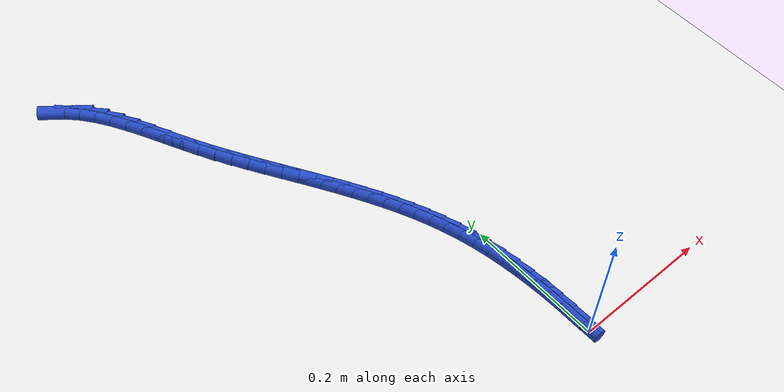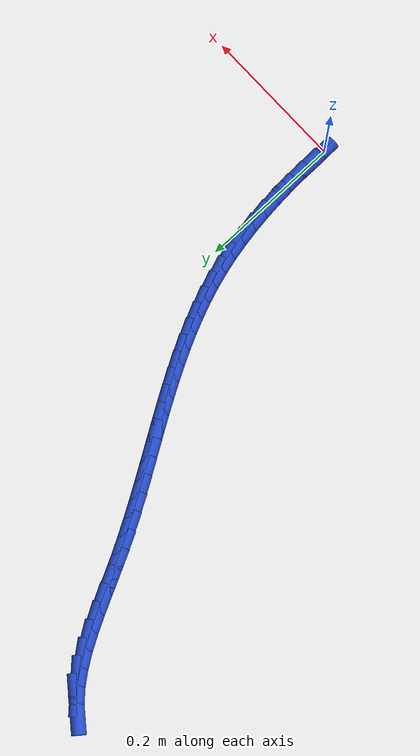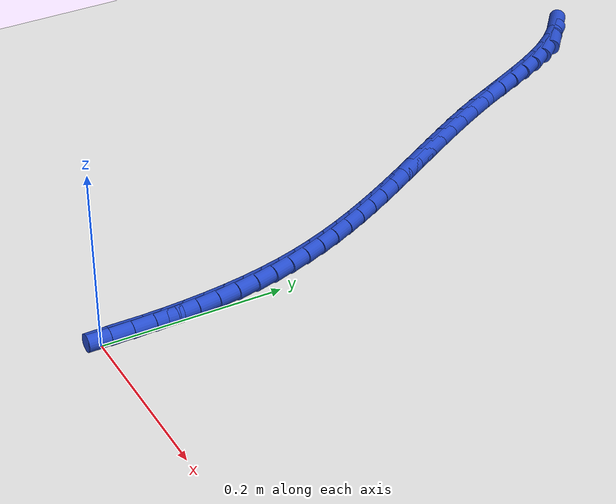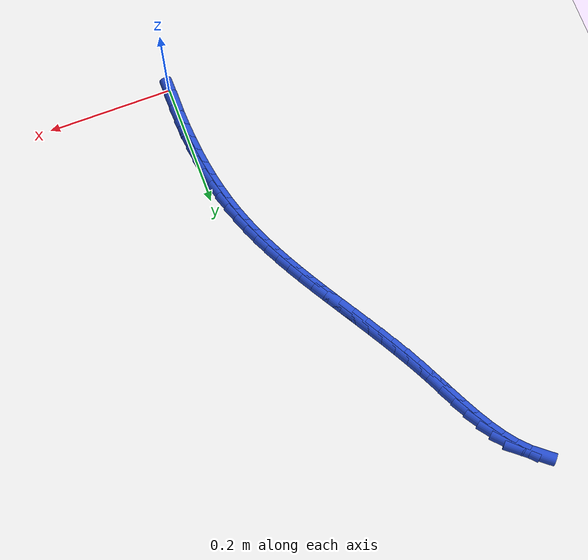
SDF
<sdf version="1.6">
 <world name="default">
  <model name="ground_plane">
   <static>1</static>
   <link name="link">
    <collision name="collision">
     <geometry><plane><normal>0 0 1</normal><size>100 100</size></plane></geometry>
     <surface><friction><ode><mu>100</mu><mu2>50</mu2></ode></friction></surface>
    </collision>
    <visual name="visual">
     <cast_shadows>0</cast_shadows>
     <geometry><plane><normal>0 0 1</normal><size>100 100</size></plane></geometry>
     <material>
      <script><uri>file://media/materials/scripts/gazebo.material</uri><name>Gazebo/WhiteGlow</name></script>
     </material>
    </visual>
   </link>
  </model>
  <model name="line">
   <link name="link_1">
    <pose>0.00020848488752704265 0.02410749578076906 0.01 0 1.57 -1.5562668115659875</pose>
    <collision name="collision">
     <geometry><cylinder><radius>0.01</radius><length>0.08</length></cylinder></geometry>
    </collision>
    <visual name="visual">
     <material>
      <script><name>Gazebo/Blue</name><uri>file://media/materials/scripts/gazebo.material</uri></script>
     </material>
     <geometry><cylinder><radius>0.01</radius><length>0.08</length></cylinder></geometry>
    </visual>
   </link>
   <link name="link_2">
    <pose>-0.00014284811022527544 0.04828643561047386 0.01 0 1.57 -1.5308184323632508</pose>
    <collision name="collision">
     <geometry><cylinder><radius>0.01</radius><length>0.08</length></cylinder></geometry>
    </collision>
    <visual name="visual">
     <material>
      <script><name>Gazebo/Blue</name><uri>file://media/materials/scripts/gazebo.material</uri></script>
     </material>
     <geometry><cylinder><radius>0.01</radius><length>0.08</length></cylinder></geometry>
    </visual>
   </link>
   <link name="link_3">
    <pose>-0.001109999954018487 0.07246571163970908 0.01 0 1.57 -1.5029176373909436</pose>
    <collision name="collision">
     <geometry><cylinder><radius>0.01</radius><length>0.08</length></cylinder></geometry>
    </collision>
    <visual name="visual">
     <material>
      <script><name>Gazebo/Blue</name><uri>file://media/materials/scripts/gazebo.material</uri></script>
     </material>
     <geometry><cylinder><radius>0.01</radius><length>0.08</length></cylinder></geometry>
    </visual>
   </link>
   <link name="link_4">
    <pose>-0.002748971604614114 0.09657421601906961 0.01 0 1.57 -1.4723618055832173</pose>
    <collision name="collision">
     <geometry><cylinder><radius>0.01</radius><length>0.08</length></cylinder></geometry>
    </collision>
    <visual name="visual">
     <material>
      <script><name>Gazebo/Blue</name><uri>file://media/materials/scripts/gazebo.material</uri></script>
     </material>
     <geometry><cylinder><radius>0.01</radius><length>0.08</length></cylinder></geometry>
    </visual>
   </link>
   <link name="link_5">
    <pose>-0.005115764022773682 0.12054084089915029 0.01 0 1.57 -1.4389289060948756</pose>
    <collision name="collision">
     <geometry><cylinder><radius>0.01</radius><length>0.08</length></cylinder></geometry>
    </collision>
    <visual name="visual">
     <material>
      <script><name>Gazebo/Blue</name><uri>file://media/materials/scripts/gazebo.material</uri></script>
     </material>
     <geometry><cylinder><radius>0.01</radius><length>0.08</length></cylinder></geometry>
    </visual>
   </link>
   <link name="link_6">
    <pose>-0.008266378169258713 0.14429447843054588 0.01 0 1.57 -1.4023807165650055</pose>
    <collision name="collision">
     <geometry><cylinder><radius>0.01</radius><length>0.08</length></cylinder></geometry>
    </collision>
    <visual name="visual">
     <material>
      <script><name>Gazebo/Blue</name><uri>file://media/materials/scripts/gazebo.material</uri></script>
     </material>
     <geometry><cylinder><radius>0.01</radius><length>0.08</length></cylinder></geometry>
    </visual>
   </link>
   <link name="link_7">
    <pose>-0.01225681500483073 0.16776402076385136 0.01 0 1.57 -1.362468233248887</pose>
    <collision name="collision">
     <geometry><cylinder><radius>0.01</radius><length>0.08</length></cylinder></geometry>
    </collision>
    <visual name="visual">
     <material>
      <script><name>Gazebo/Blue</name><uri>file://media/materials/scripts/gazebo.material</uri></script>
     </material>
     <geometry><cylinder><radius>0.01</radius><length>0.08</length></cylinder></geometry>
    </visual>
   </link>
   <link name="link_8">
    <pose>-0.017143075490251257 0.19087836004966147 0.01 0 1.57 -1.3189401385113497</pose>
    <collision name="collision">
     <geometry><cylinder><radius>0.01</radius><length>0.08</length></cylinder></geometry>
    </collision>
    <visual name="visual">
     <material>
      <script><name>Gazebo/Blue</name><uri>file://media/materials/scripts/gazebo.material</uri></script>
     </material>
     <geometry><cylinder><radius>0.01</radius><length>0.08</length></cylinder></geometry>
    </visual>
   </link>
   <link name="link_9">
    <pose>-0.022981160586281815 0.21356638843857104 0.01 0 1.57 -1.2725637473694866</pose>
    <collision name="collision">
     <geometry><cylinder><radius>0.01</radius><length>0.08</length></cylinder></geometry>
    </collision>
    <visual name="visual">
     <material>
      <script><name>Gazebo/Blue</name><uri>file://media/materials/scripts/gazebo.material</uri></script>
     </material>
     <geometry><cylinder><radius>0.01</radius><length>0.08</length></cylinder></geometry>
    </visual>
   </link>
   <link name="link_10">
    <pose>-0.029808168838661362 0.23577520859121814 0.01 0 1.57 -1.2282336816075337</pose>
    <collision name="collision">
     <geometry><cylinder><radius>0.01</radius><length>0.08</length></cylinder></geometry>
    </collision>
    <visual name="visual">
     <material>
      <script><name>Gazebo/Blue</name><uri>file://media/materials/scripts/gazebo.material</uri></script>
     </material>
     <geometry><cylinder><radius>0.01</radius><length>0.08</length></cylinder></geometry>
    </visual>
   </link>
   <link name="link_11">
    <pose>-0.03756993506367793 0.2575398462754079 0.01 0 1.57 -1.1877903860219634</pose>
    <collision name="collision">
     <geometry><cylinder><radius>0.01</radius><length>0.08</length></cylinder></geometry>
    </collision>
    <visual name="visual">
     <material>
      <script><name>Gazebo/Blue</name><uri>file://media/materials/scripts/gazebo.material</uri></script>
     </material>
     <geometry><cylinder><radius>0.01</radius><length>0.08</length></cylinder></geometry>
    </visual>
   </link>
   <link name="link_12">
    <pose>-0.04618478674090746 0.2789218277156787 0.01 0 1.57 -1.1515464099687087</pose>
    <collision name="collision">
     <geometry><cylinder><radius>0.01</radius><length>0.08</length></cylinder></geometry>
    </collision>
    <visual name="visual">
     <material>
      <script><name>Gazebo/Blue</name><uri>file://media/materials/scripts/gazebo.material</uri></script>
     </material>
     <geometry><cylinder><radius>0.01</radius><length>0.08</length></cylinder></geometry>
    </visual>
   </link>
   <link name="link_13">
    <pose>-0.055571045725794556 0.29998268455483396 0.01 0 1.57 -1.1197120318245413</pose>
    <collision name="collision">
     <geometry><cylinder><radius>0.01</radius><length>0.08</length></cylinder></geometry>
    </collision>
    <visual name="visual">
     <material>
      <script><name>Gazebo/Blue</name><uri>file://media/materials/scripts/gazebo.material</uri></script>
     </material>
     <geometry><cylinder><radius>0.01</radius><length>0.08</length></cylinder></geometry>
    </visual>
   </link>
   <link name="link_14">
    <pose>-0.0656470338737839 0.3207839484356774 0.01 0 1.57 -1.0924095805687792</pose>
    <collision name="collision">
     <geometry><cylinder><radius>0.01</radius><length>0.08</length></cylinder></geometry>
    </collision>
    <visual name="visual">
     <material>
      <script><name>Gazebo/Blue</name><uri>file://media/materials/scripts/gazebo.material</uri></script>
     </material>
     <geometry><cylinder><radius>0.01</radius><length>0.08</length></cylinder></geometry>
    </visual>
   </link>
   <link name="link_15">
    <pose>-0.0763310730403201 0.3413871510010125 0.01 0 1.57 -1.0696900229705566</pose>
    <collision name="collision">
     <geometry><cylinder><radius>0.01</radius><length>0.08</length></cylinder></geometry>
    </collision>
    <visual name="visual">
     <material>
      <script><name>Gazebo/Blue</name><uri>file://media/materials/scripts/gazebo.material</uri></script>
     </material>
     <geometry><cylinder><radius>0.01</radius><length>0.08</length></cylinder></geometry>
    </visual>
   </link>
   <link name="link_16">
    <pose>-0.08754148508084778 0.361853823893643 0.01 0 1.57 -1.051549622548458</pose>
    <collision name="collision">
     <geometry><cylinder><radius>0.01</radius><length>0.08</length></cylinder></geometry>
    </collision>
    <visual name="visual">
     <material>
      <script><name>Gazebo/Blue</name><uri>file://media/materials/scripts/gazebo.material</uri></script>
     </material>
     <geometry><cylinder><radius>0.01</radius><length>0.08</length></cylinder></geometry>
    </visual>
   </link>
   <link name="link_17">
    <pose>-0.09919659185081163 0.3822454987563724 0.01 0 1.57 -1.0379449558422367</pose>
    <collision name="collision">
     <geometry><cylinder><radius>0.01</radius><length>0.08</length></cylinder></geometry>
    </collision>
    <visual name="visual">
     <material>
      <script><name>Gazebo/Blue</name><uri>file://media/materials/scripts/gazebo.material</uri></script>
     </material>
     <geometry><cylinder><radius>0.01</radius><length>0.08</length></cylinder></geometry>
    </visual>
   </link>
   <link name="link_18">
    <pose>-0.11121471520565619 0.40262370723200414 0.01 0 1.57 -1.0288053096682461</pose>
    <collision name="collision">
     <geometry><cylinder><radius>0.01</radius><length>0.08</length></cylinder></geometry>
    </collision>
    <visual name="visual">
     <material>
      <script><name>Gazebo/Blue</name><uri>file://media/materials/scripts/gazebo.material</uri></script>
     </material>
     <geometry><cylinder><radius>0.01</radius><length>0.08</length></cylinder></geometry>
    </visual>
   </link>
   <link name="link_19">
    <pose>-0.12351417700082622 0.4230499809633422 0.01 0 1.57 -1.0240420607333447</pose>
    <collision name="collision">
     <geometry><cylinder><radius>0.01</radius><length>0.08</length></cylinder></geometry>
    </collision>
    <visual name="visual">
     <material>
      <script><name>Gazebo/Blue</name><uri>file://media/materials/scripts/gazebo.material</uri></script>
     </material>
     <geometry><cylinder><radius>0.01</radius><length>0.08</length></cylinder></geometry>
    </visual>
   </link>
   <link name="link_20">
    <pose>-0.13601329909176632 0.44358585159318975 0.01 0 1.57 -1.0235550292447202</pose>
    <collision name="collision">
     <geometry><cylinder><radius>0.01</radius><length>0.08</length></cylinder></geometry>
    </collision>
    <visual name="visual">
     <material>
      <script><name>Gazebo/Blue</name><uri>file://media/materials/scripts/gazebo.material</uri></script>
     </material>
     <geometry><cylinder><radius>0.01</radius><length>0.08</length></cylinder></geometry>
    </visual>
   </link>
   <link name="link_21">
    <pose>-0.14863040333392114 0.4642928507643507 0.01 0 1.57 -1.0272360277824653</pose>
    <collision name="collision">
     <geometry><cylinder><radius>0.01</radius><length>0.08</length></cylinder></geometry>
    </collision>
    <visual name="visual">
     <material>
      <script><name>Gazebo/Blue</name><uri>file://media/materials/scripts/gazebo.material</uri></script>
     </material>
     <geometry><cylinder><radius>0.01</radius><length>0.08</length></cylinder></geometry>
    </visual>
   </link>
   <link name="link_22">
    <pose>-0.16128381158273522 0.4852325101196283 0.01 0 1.57 -1.0349699435198396</pose>
    <collision name="collision">
     <geometry><cylinder><radius>0.01</radius><length>0.08</length></cylinder></geometry>
    </collision>
    <visual name="visual">
     <material>
      <script><name>Gazebo/Blue</name><uri>file://media/materials/scripts/gazebo.material</uri></script>
     </material>
     <geometry><cylinder><radius>0.01</radius><length>0.08</length></cylinder></geometry>
    </visual>
   </link>
   <link name="link_23">
    <pose>-0.1738918456936533 0.5064663613018263 0.01 0 1.57 -1.0466337441758669</pose>
    <collision name="collision">
     <geometry><cylinder><radius>0.01</radius><length>0.08</length></cylinder></geometry>
    </collision>
    <visual name="visual">
     <material>
      <script><name>Gazebo/Blue</name><uri>file://media/materials/scripts/gazebo.material</uri></script>
     </material>
     <geometry><cylinder><radius>0.01</radius><length>0.08</length></cylinder></geometry>
    </visual>
   </link>
   <link name="link_24">
    <pose>-0.18637282752212 0.5280559359537487 0.01 0 1.57 -1.0620938247797163</pose>
    <collision name="collision">
     <geometry><cylinder><radius>0.01</radius><length>0.08</length></cylinder></geometry>
    </collision>
    <visual name="visual">
     <material>
      <script><name>Gazebo/Blue</name><uri>file://media/materials/scripts/gazebo.material</uri></script>
     </material>
     <geometry><cylinder><radius>0.01</radius><length>0.08</length></cylinder></geometry>
    </visual>
   </link>
   <link name="link_25">
    <pose>-0.19864507892357997 0.5500627657181983 0.01 0 1.57 -1.0812021396404852</pose>
    <collision name="collision">
     <geometry><cylinder><radius>0.01</radius><length>0.08</length></cylinder></geometry>
    </collision>
    <visual name="visual">
     <material>
      <script><name>Gazebo/Blue</name><uri>file://media/materials/scripts/gazebo.material</uri></script>
     </material>
     <geometry><cylinder><radius>0.01</radius><length>0.08</length></cylinder></geometry>
    </visual>
   </link>
   <link name="link_26">
    <pose>-0.21062692175347777 0.5725483822379792 0.01 0 1.57 -1.1025099088366677</pose>
    <collision name="collision">
     <geometry><cylinder><radius>0.01</radius><length>0.08</length></cylinder></geometry>
    </collision>
    <visual name="visual">
     <material>
      <script><name>Gazebo/Blue</name><uri>file://media/materials/scripts/gazebo.material</uri></script>
     </material>
     <geometry><cylinder><radius>0.01</radius><length>0.08</length></cylinder></geometry>
    </visual>
   </link>
   <link name="link_27">
    <pose>-0.22225908533052938 0.5955453906329737 0.01 0 1.57 -1.1139822080428494</pose>
    <collision name="collision">
     <geometry><cylinder><radius>0.01</radius><length>0.08</length></cylinder></geometry>
    </collision>
    <visual name="visual">
     <material>
      <script><name>Gazebo/Blue</name><uri>file://media/materials/scripts/gazebo.material</uri></script>
     </material>
     <geometry><cylinder><radius>0.01</radius><length>0.08</length></cylinder></geometry>
    </visual>
   </link>
   <link name="link_28">
    <pose>-0.23369452997396997 0.618812420123753 0.01 0 1.57 -1.1093493097623621</pose>
    <collision name="collision">
     <geometry><cylinder><radius>0.01</radius><length>0.08</length></cylinder></geometry>
    </collision>
    <visual name="visual">
     <material>
      <script><name>Gazebo/Blue</name><uri>file://media/materials/scripts/gazebo.material</uri></script>
     </material>
     <geometry><cylinder><radius>0.01</radius><length>0.08</length></cylinder></geometry>
    </visual>
   </link>
   <link name="link_29">
    <pose>-0.24520323994148469 0.6419570299236813 0.01 0 1.57 -1.0882714877261002</pose>
    <collision name="collision">
     <geometry><cylinder><radius>0.01</radius><length>0.08</length></cylinder></geometry>
    </collision>
    <visual name="visual">
     <material>
      <script><name>Gazebo/Blue</name><uri>file://media/materials/scripts/gazebo.material</uri></script>
     </material>
     <geometry><cylinder><radius>0.01</radius><length>0.08</length></cylinder></geometry>
    </visual>
   </link>
   <link name="link_30">
    <pose>-0.2570564234254391 0.6645851992290472 0.01 0 1.57 -1.0496134372135149</pose>
    <collision name="collision">
     <geometry><cylinder><radius>0.01</radius><length>0.08</length></cylinder></geometry>
    </collision>
    <visual name="visual">
     <material>
      <script><name>Gazebo/Blue</name><uri>file://media/materials/scripts/gazebo.material</uri></script>
     </material>
     <geometry><cylinder><radius>0.01</radius><length>0.08</length></cylinder></geometry>
    </visual>
   </link>
   <link name="link_31">
    <pose>-0.26952528861819897 0.6863029072361392 0.01 0 1.57 -0.9914254164824424</pose>
    <collision name="collision">
     <geometry><cylinder><radius>0.01</radius><length>0.08</length></cylinder></geometry>
    </collision>
    <visual name="visual">
     <material>
      <script><name>Gazebo/Blue</name><uri>file://media/materials/scripts/gazebo.material</uri></script>
     </material>
     <geometry><cylinder><radius>0.01</radius><length>0.08</length></cylinder></geometry>
    </visual>
   </link>
   <link name="link_32">
    <pose>-0.28288104371213013 0.7067161331412463 0.01 0 1.57 -0.9111544199915123</pose>
    <collision name="collision">
     <geometry><cylinder><radius>0.01</radius><length>0.08</length></cylinder></geometry>
    </collision>
    <visual name="visual">
     <material>
      <script><name>Gazebo/Blue</name><uri>file://media/materials/scripts/gazebo.material</uri></script>
     </material>
     <geometry><cylinder><radius>0.01</radius><length>0.08</length></cylinder></geometry>
    </visual>
   </link>
   <link name="link_33">
    <pose>-0.2973948968995982 0.7254308561406568 0.01 0 1.57 -0.8062467416112244</pose>
    <collision name="collision">
     <geometry><cylinder><radius>0.01</radius><length>0.08</length></cylinder></geometry>
    </collision>
    <visual name="visual">
     <material>
      <script><name>Gazebo/Blue</name><uri>file://media/materials/scripts/gazebo.material</uri></script>
     </material>
     <geometry><cylinder><radius>0.01</radius><length>0.08</length></cylinder></geometry>
    </visual>
   </link>
   <link name="link_34">
    <pose>-0.31333805637296885 0.7420530554306594 0.01 0 1.57 -0.6754564530873327</pose>
    <collision name="collision">
     <geometry><cylinder><radius>0.01</radius><length>0.08</length></cylinder></geometry>
    </collision>
    <visual name="visual">
     <material>
      <script><name>Gazebo/Blue</name><uri>file://media/materials/scripts/gazebo.material</uri></script>
     </material>
     <geometry><cylinder><radius>0.01</radius><length>0.08</length></cylinder></geometry>
    </visual>
   </link>
   <link name="link_291">
    <pose>0.00021571331006330898 0.024123225503890636 0.01 0 1.57 -1.5584154926356977</pose>
    <collision name="collision">
     <geometry><cylinder><radius>0.01</radius><length>0.08</length></cylinder></geometry>
    </collision>
    <visual name="visual">
     <material>
      <script><name>Gazebo/Blue</name><uri>file://media/materials/scripts/gazebo.material</uri></script>
     </material>
     <geometry><cylinder><radius>0.01</radius><length>0.08</length></cylinder></geometry>
    </visual>
   </link>
   <link name="link_292">
    <pose>-8.502072993520765e-05 0.0484122733954513 0.01 0 1.57 -1.5690401472857323</pose>
    <collision name="collision">
     <geometry><cylinder><radius>0.01</radius><length>0.08</length></cylinder></geometry>
    </collision>
    <visual name="visual">
     <material>
      <script><name>Gazebo/Blue</name><uri>file://media/materials/scripts/gazebo.material</uri></script>
     </material>
     <geometry><cylinder><radius>0.01</radius><length>0.08</length></cylinder></geometry>
    </visual>
   </link>
  </model>
 </world>
</sdf>
